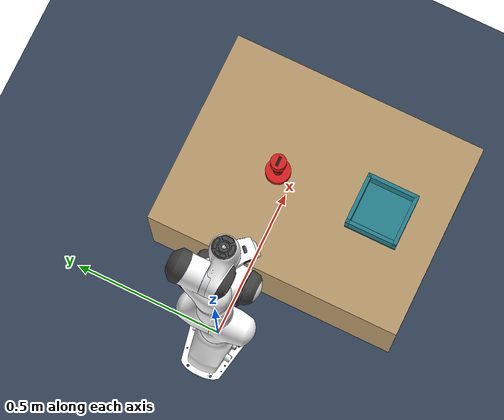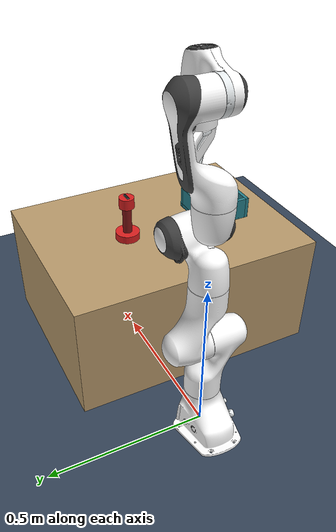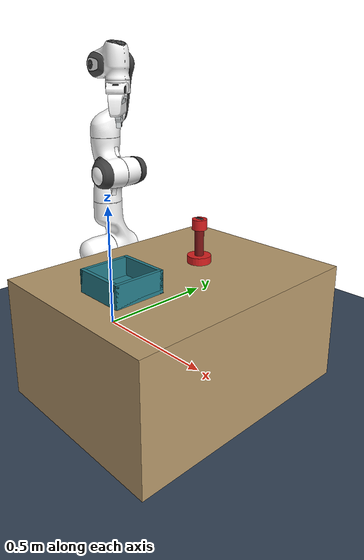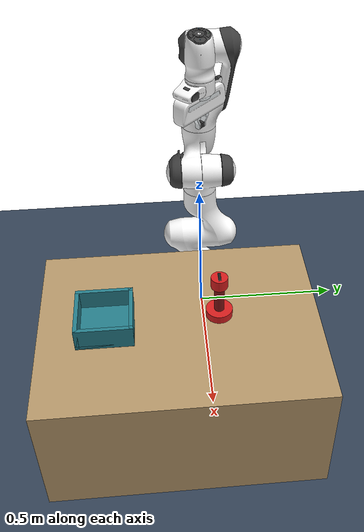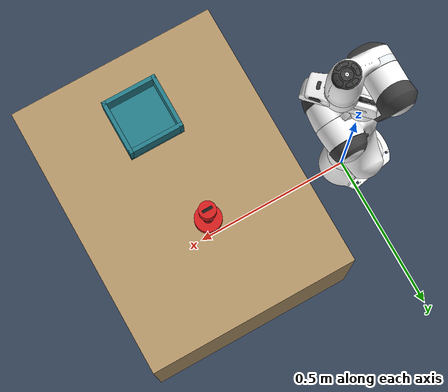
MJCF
<mujoco model="pick_place_scene">
  <include file="../robots/panda/panda.xml"/>
  <compiler angle="radian" meshdir="../robots/panda/assets" autolimits="true"/>

  <statistic center="0.4 -0.1 0.4" extent="1.2"/>

  <visual>
    <headlight diffuse="0.6 0.6 0.6" ambient="0.35 0.35 0.35" specular="0.1 0.1 0.1"/>
    <rgba haze="0.15 0.25 0.35 1"/>
    <global azimuth="140" elevation="-22" offwidth="1280" offheight="960"/>
    <quality shadowsize="4096"/>
    <!-- 收紧深度裁剪范围以提升 RGB-D 深度精度（改善像素反投影位姿估计） -->
    <map znear="0.05" zfar="2.2"/>
  </visual>

  <asset>
    <texture type="skybox" builtin="gradient" rgb1="0.35 0.55 0.75" rgb2="0.05 0.08 0.12" width="512" height="3072"/>
    <texture type="2d" name="groundplane" builtin="checker" mark="edge" rgb1="0.25 0.32 0.4" rgb2="0.15 0.2 0.28"
      markrgb="0.8 0.8 0.8" width="300" height="300"/>
    <material name="groundplane" texture="groundplane" texuniform="true" texrepeat="5 5" reflectance="0.15"/>
    <material name="table_wood" rgba="0.72 0.6 0.42 1" specular="0.15" shininess="0.2"/>
  </asset>

  <worldbody>
    <light pos="0.4 0.2 2.0" dir="0 0 -1" directional="true" diffuse="0.5 0.5 0.5"/>
    <light pos="0.4 -0.6 1.6" dir="0 0.4 -1" diffuse="0.35 0.35 0.35"/>
    <geom name="floor" size="0 0 0.05" type="plane" material="groundplane"/>

    <!-- 工作台：台面高 0.40 m -->
    <body name="table" pos="0.5 -0.1 0.20">
      <geom name="table_top" type="box" size="0.32 0.42 0.20" material="table_wood"
            friction="1.0 0.02 0.001" condim="4"/>
    </body>

    <!-- 固定 RGB-D 相机（眼在手外，主感知相机），俯视工作区 -->
    <camera name="scene_cam" pos="0.5 0.75 1.05" mode="targetbody" target="table" fovy="50"/>
    <!-- 近似俯视相机，用于位姿真值对照 -->
    <camera name="topdown_cam" pos="0.5 -0.1 1.35" mode="targetbody" target="table" fovy="52"/>
    <!-- 演示/录像用相机（斜前方，画面更立体） -->
    <camera name="video_cam" pos="1.15 0.85 0.95" mode="targetbody" target="table" fovy="45"/>
  </worldbody>

  <include file="../objects/cube.xml"/>
  <include file="../objects/tray.xml"/>

  <!-- 抓取焊接约束：夹爪闭合且物体在指间时激活，等效牢固夹持；松开时解除。
       relpose 在激活瞬间由代码按当前相对位姿写入。 -->
  <equality>
    <weld name="grasp_weld" body1="hand" body2="energy_unit" active="false"
          solref="0.02 1" solimp="0.9 0.95 0.001"/>
  </equality>
</mujoco>

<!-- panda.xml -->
<mujoco model="panda">
  <compiler angle="radian" meshdir="assets" autolimits="true"/>

  <option integrator="implicitfast"/>

  <default>
    <default class="panda">
      <material specular="0.5" shininess="0.25"/>
      <joint armature="0.1" damping="1" axis="0 0 1" range="-2.8973 2.8973"/>
      <general dyntype="none" biastype="affine" ctrlrange="-2.8973 2.8973" forcerange="-87 87"/>
      <default class="finger">
        <joint axis="0 1 0" type="slide" range="0 0.04"/>
      </default>

      <default class="visual">
        <geom type="mesh" contype="0" conaffinity="0" group="2"/>
      </default>
      <default class="collision">
        <geom type="mesh" group="3"/>
        <default class="fingertip_pad_collision_1">
          <geom type="box" size="0.0085 0.004 0.0085" pos="0 0.0055 0.0445"/>
        </default>
        <default class="fingertip_pad_collision_2">
          <geom type="box" size="0.003 0.002 0.003" pos="0.0055 0.002 0.05"/>
        </default>
        <default class="fingertip_pad_collision_3">
          <geom type="box" size="0.003 0.002 0.003" pos="-0.0055 0.002 0.05"/>
        </default>
        <default class="fingertip_pad_collision_4">
          <geom type="box" size="0.003 0.002 0.0035" pos="0.0055 0.002 0.0395"/>
        </default>
        <default class="fingertip_pad_collision_5">
          <geom type="box" size="0.003 0.002 0.0035" pos="-0.0055 0.002 0.0395"/>
        </default>
      </default>
    </default>
  </default>

  <asset>
    <material class="panda" name="white" rgba="1 1 1 1"/>
    <material class="panda" name="off_white" rgba="0.901961 0.921569 0.929412 1"/>
    <material class="panda" name="black" rgba="0.25 0.25 0.25 1"/>
    <material class="panda" name="green" rgba="0 1 0 1"/>
    <material class="panda" name="light_blue" rgba="0.039216 0.541176 0.780392 1"/>

    <!-- Collision meshes -->
    <mesh name="link0_c" file="link0.stl"/>
    <mesh name="link1_c" file="link1.stl"/>
    <mesh name="link2_c" file="link2.stl"/>
    <mesh name="link3_c" file="link3.stl"/>
    <mesh name="link4_c" file="link4.stl"/>
    <mesh name="link5_c0" file="link5_collision_0.obj"/>
    <mesh name="link5_c1" file="link5_collision_1.obj"/>
    <mesh name="link5_c2" file="link5_collision_2.obj"/>
    <mesh name="link6_c" file="link6.stl"/>
    <mesh name="link7_c" file="link7.stl"/>
    <mesh name="hand_c" file="hand.stl"/>

    <!-- Visual meshes -->
    <mesh file="link0_0.obj"/>
    <mesh file="link0_1.obj"/>
    <mesh file="link0_2.obj"/>
    <mesh file="link0_3.obj"/>
    <mesh file="link0_4.obj"/>
    <mesh file="link0_5.obj"/>
    <mesh file="link0_7.obj"/>
    <mesh file="link0_8.obj"/>
    <mesh file="link0_9.obj"/>
    <mesh file="link0_10.obj"/>
    <mesh file="link0_11.obj"/>
    <mesh file="link1.obj"/>
    <mesh file="link2.obj"/>
    <mesh file="link3_0.obj"/>
    <mesh file="link3_1.obj"/>
    <mesh file="link3_2.obj"/>
    <mesh file="link3_3.obj"/>
    <mesh file="link4_0.obj"/>
    <mesh file="link4_1.obj"/>
    <mesh file="link4_2.obj"/>
    <mesh file="link4_3.obj"/>
    <mesh file="link5_0.obj"/>
    <mesh file="link5_1.obj"/>
    <mesh file="link5_2.obj"/>
    <mesh file="link6_0.obj"/>
    <mesh file="link6_1.obj"/>
    <mesh file="link6_2.obj"/>
    <mesh file="link6_3.obj"/>
    <mesh file="link6_4.obj"/>
    <mesh file="link6_5.obj"/>
    <mesh file="link6_6.obj"/>
    <mesh file="link6_7.obj"/>
    <mesh file="link6_8.obj"/>
    <mesh file="link6_9.obj"/>
    <mesh file="link6_10.obj"/>
    <mesh file="link6_11.obj"/>
    <mesh file="link6_12.obj"/>
    <mesh file="link6_13.obj"/>
    <mesh file="link6_14.obj"/>
    <mesh file="link6_15.obj"/>
    <mesh file="link6_16.obj"/>
    <mesh file="link7_0.obj"/>
    <mesh file="link7_1.obj"/>
    <mesh file="link7_2.obj"/>
    <mesh file="link7_3.obj"/>
    <mesh file="link7_4.obj"/>
    <mesh file="link7_5.obj"/>
    <mesh file="link7_6.obj"/>
    <mesh file="link7_7.obj"/>
    <mesh file="hand_0.obj"/>
    <mesh file="hand_1.obj"/>
    <mesh file="hand_2.obj"/>
    <mesh file="hand_3.obj"/>
    <mesh file="hand_4.obj"/>
    <mesh file="finger_0.obj"/>
    <mesh file="finger_1.obj"/>
  </asset>

  <worldbody>
    <light name="top" pos="0 0 2" mode="trackcom"/>
    <body name="link0" childclass="panda">
      <inertial mass="0.629769" pos="-0.041018 -0.00014 0.049974"
        fullinertia="0.00315 0.00388 0.004285 8.2904e-7 0.00015 8.2299e-6"/>
      <geom mesh="link0_0" material="off_white" class="visual"/>
      <geom mesh="link0_1" material="black" class="visual"/>
      <geom mesh="link0_2" material="off_white" class="visual"/>
      <geom mesh="link0_3" material="black" class="visual"/>
      <geom mesh="link0_4" material="off_white" class="visual"/>
      <geom mesh="link0_5" material="black" class="visual"/>
      <geom mesh="link0_7" material="white" class="visual"/>
      <geom mesh="link0_8" material="white" class="visual"/>
      <geom mesh="link0_9" material="black" class="visual"/>
      <geom mesh="link0_10" material="off_white" class="visual"/>
      <geom mesh="link0_11" material="white" class="visual"/>
      <geom mesh="link0_c" class="collision"/>
      <body name="link1" pos="0 0 0.333">
        <inertial mass="4.970684" pos="0.003875 0.002081 -0.04762"
          fullinertia="0.70337 0.70661 0.0091170 -0.00013900 0.0067720 0.019169"/>
        <joint name="joint1"/>
        <geom material="white" mesh="link1" class="visual"/>
        <geom mesh="link1_c" class="collision"/>
        <body name="link2" quat="1 -1 0 0">
          <inertial mass="0.646926" pos="-0.003141 -0.02872 0.003495"
            fullinertia="0.0079620 2.8110e-2 2.5995e-2 -3.925e-3 1.0254e-2 7.04e-4"/>
          <joint name="joint2" range="-1.7628 1.7628"/>
          <geom material="white" mesh="link2" class="visual"/>
          <geom mesh="link2_c" class="collision"/>
          <body name="link3" pos="0 -0.316 0" quat="1 1 0 0">
            <joint name="joint3"/>
            <inertial mass="3.228604" pos="2.7518e-2 3.9252e-2 -6.6502e-2"
              fullinertia="3.7242e-2 3.6155e-2 1.083e-2 -4.761e-3 -1.1396e-2 -1.2805e-2"/>
            <geom mesh="link3_0" material="white" class="visual"/>
            <geom mesh="link3_1" material="white" class="visual"/>
            <geom mesh="link3_2" material="white" class="visual"/>
            <geom mesh="link3_3" material="black" class="visual"/>
            <geom mesh="link3_c" class="collision"/>
            <body name="link4" pos="0.0825 0 0" quat="1 1 0 0">
              <inertial mass="3.587895" pos="-5.317e-2 1.04419e-1 2.7454e-2"
                fullinertia="2.5853e-2 1.9552e-2 2.8323e-2 7.796e-3 -1.332e-3 8.641e-3"/>
              <joint name="joint4" range="-3.0718 -0.0698"/>
              <geom mesh="link4_0" material="white" class="visual"/>
              <geom mesh="link4_1" material="white" class="visual"/>
              <geom mesh="link4_2" material="black" class="visual"/>
              <geom mesh="link4_3" material="white" class="visual"/>
              <geom mesh="link4_c" class="collision"/>
              <body name="link5" pos="-0.0825 0.384 0" quat="1 -1 0 0">
                <inertial mass="1.225946" pos="-1.1953e-2 4.1065e-2 -3.8437e-2"
                  fullinertia="3.5549e-2 2.9474e-2 8.627e-3 -2.117e-3 -4.037e-3 2.29e-4"/>
                <joint name="joint5"/>
                <geom mesh="link5_0" material="black" class="visual"/>
                <geom mesh="link5_1" material="white" class="visual"/>
                <geom mesh="link5_2" material="white" class="visual"/>
                <geom mesh="link5_c0" class="collision"/>
                <geom mesh="link5_c1" class="collision"/>
                <geom mesh="link5_c2" class="collision"/>
                <body name="link6" quat="1 1 0 0">
                  <inertial mass="1.666555" pos="6.0149e-2 -1.4117e-2 -1.0517e-2"
                    fullinertia="1.964e-3 4.354e-3 5.433e-3 1.09e-4 -1.158e-3 3.41e-4"/>
                  <joint name="joint6" range="-0.0175 3.7525"/>
                  <geom mesh="link6_0" material="off_white" class="visual"/>
                  <geom mesh="link6_1" material="white" class="visual"/>
                  <geom mesh="link6_2" material="black" class="visual"/>
                  <geom mesh="link6_3" material="white" class="visual"/>
                  <geom mesh="link6_4" material="white" class="visual"/>
                  <geom mesh="link6_5" material="white" class="visual"/>
                  <geom mesh="link6_6" material="white" class="visual"/>
                  <geom mesh="link6_7" material="light_blue" class="visual"/>
                  <geom mesh="link6_8" material="light_blue" class="visual"/>
                  <geom mesh="link6_9" material="black" class="visual"/>
                  <geom mesh="link6_10" material="black" class="visual"/>
                  <geom mesh="link6_11" material="white" class="visual"/>
                  <geom mesh="link6_12" material="green" class="visual"/>
                  <geom mesh="link6_13" material="white" class="visual"/>
                  <geom mesh="link6_14" material="black" class="visual"/>
                  <geom mesh="link6_15" material="black" class="visual"/>
                  <geom mesh="link6_16" material="white" class="visual"/>
                  <geom mesh="link6_c" class="collision"/>
                  <body name="link7" pos="0.088 0 0" quat="1 1 0 0">
                    <inertial mass="7.35522e-01" pos="1.0517e-2 -4.252e-3 6.1597e-2"
                      fullinertia="1.2516e-2 1.0027e-2 4.815e-3 -4.28e-4 -1.196e-3 -7.41e-4"/>
                    <joint name="joint7"/>
                    <geom mesh="link7_0" material="white" class="visual"/>
                    <geom mesh="link7_1" material="black" class="visual"/>
                    <geom mesh="link7_2" material="black" class="visual"/>
                    <geom mesh="link7_3" material="black" class="visual"/>
                    <geom mesh="link7_4" material="black" class="visual"/>
                    <geom mesh="link7_5" material="black" class="visual"/>
                    <geom mesh="link7_6" material="black" class="visual"/>
                    <geom mesh="link7_7" material="white" class="visual"/>
                    <geom mesh="link7_c" class="collision"/>
                    <body name="hand" pos="0 0 0.107" quat="0.9238795 0 0 -0.3826834">
                      <inertial mass="0.73" pos="-0.01 0 0.03" diaginertia="0.001 0.0025 0.0017"/>
                      <site name="grasp_site" pos="0 0 0.085" size="0.006" rgba="1 0.2 0.2 0.6" group="4"/>
                      <geom mesh="hand_0" material="off_white" class="visual"/>
                      <geom mesh="hand_1" material="black" class="visual"/>
                      <geom mesh="hand_2" material="black" class="visual"/>
                      <geom mesh="hand_3" material="white" class="visual"/>
                      <geom mesh="hand_4" material="off_white" class="visual"/>
                      <geom mesh="hand_c" class="collision"/>
                      <body name="left_finger" pos="0 0 0.0584">
                        <inertial mass="0.015" pos="0 0 0" diaginertia="2.375e-6 2.375e-6 7.5e-7"/>
                        <joint name="finger_joint1" class="finger"/>
                        <geom mesh="finger_0" material="off_white" class="visual"/>
                        <geom mesh="finger_1" material="black" class="visual"/>
                        <geom mesh="finger_0" class="collision"/>
                        <geom class="fingertip_pad_collision_1"/>
                        <geom class="fingertip_pad_collision_2"/>
                        <geom class="fingertip_pad_collision_3"/>
                        <geom class="fingertip_pad_collision_4"/>
                        <geom class="fingertip_pad_collision_5"/>
                      </body>
                      <body name="right_finger" pos="0 0 0.0584" quat="0 0 0 1">
                        <inertial mass="0.015" pos="0 0 0" diaginertia="2.375e-6 2.375e-6 7.5e-7"/>
                        <joint name="finger_joint2" class="finger"/>
                        <geom mesh="finger_0" material="off_white" class="visual"/>
                        <geom mesh="finger_1" material="black" class="visual"/>
                        <geom mesh="finger_0" class="collision"/>
                        <geom class="fingertip_pad_collision_1"/>
                        <geom class="fingertip_pad_collision_2"/>
                        <geom class="fingertip_pad_collision_3"/>
                        <geom class="fingertip_pad_collision_4"/>
                        <geom class="fingertip_pad_collision_5"/>
                      </body>
                    </body>
                  </body>
                </body>
              </body>
            </body>
          </body>
        </body>
      </body>
    </body>
  </worldbody>

  <tendon>
    <fixed name="split">
      <joint joint="finger_joint1" coef="0.5"/>
      <joint joint="finger_joint2" coef="0.5"/>
    </fixed>
  </tendon>

  <equality>
    <joint joint1="finger_joint1" joint2="finger_joint2" solimp="0.95 0.99 0.001" solref="0.005 1"/>
  </equality>

  <actuator>
    <general class="panda" name="actuator1" joint="joint1" gainprm="4500" biasprm="0 -4500 -450"/>
    <general class="panda" name="actuator2" joint="joint2" gainprm="4500" biasprm="0 -4500 -450"
      ctrlrange="-1.7628 1.7628"/>
    <general class="panda" name="actuator3" joint="joint3" gainprm="3500" biasprm="0 -3500 -350"/>
    <general class="panda" name="actuator4" joint="joint4" gainprm="3500" biasprm="0 -3500 -350"
      ctrlrange="-3.0718 -0.0698"/>
    <general class="panda" name="actuator5" joint="joint5" gainprm="2000" biasprm="0 -2000 -200" forcerange="-12 12"/>
    <general class="panda" name="actuator6" joint="joint6" gainprm="2000" biasprm="0 -2000 -200" forcerange="-12 12"
      ctrlrange="-0.0175 3.7525"/>
    <general class="panda" name="actuator7" joint="joint7" gainprm="2000" biasprm="0 -2000 -200" forcerange="-12 12"/>
    <!-- Remap original ctrlrange (0, 0.04) to (0, 255): 0.04 * 100 / 255 = 0.01568627451 -->
    <general class="panda" name="actuator8" tendon="split" forcerange="-100 100" ctrlrange="0 255"
      gainprm="0.01568627451 0 0" biasprm="0 -100 -10"/>
  </actuator>

  <!-- home keyframe 已移除：整场景含自由关节物体，qpos 维度改变，初始位姿改由 configs/robot.yaml 在代码中设置 -->

  <contact>
    <exclude body1="link0" body2="link1"/>
  </contact>
</mujoco>

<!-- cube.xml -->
<mujoco model="energy_unit">
  <asset>
    <material name="energy_red" rgba="0.85 0.12 0.12 1" specular="0.3" shininess="0.3"/>
    <material name="energy_dark" rgba="0.5 0.08 0.08 1"/>
  </asset>

  <worldbody>
    <body name="energy_unit" pos="0.48 0.02 0.4005">
      <freejoint name="energy_unit_free"/>
      <inertial pos="0 0 0.07" mass="0.45" diaginertia="0.0009 0.0009 0.00035"/>
      <!-- 底端盖：Ø80 (r0.040)，z ∈ [0, 0.025] -->
      <geom name="eu_bottom" type="cylinder" material="energy_red"
            pos="0 0 0.0125" size="0.040 0.0125"
            friction="1.2 0.02 0.001" condim="6" solref="0.004 1" solimp="0.95 0.99 0.001"/>
      <!-- 细腰（可夹持段，仿真代理 Ø30, r0.015）：z ∈ [0.025, 0.115]，供夹爪自上而下环入夹持 -->
      <geom name="eu_waist" type="cylinder" material="energy_dark"
            pos="0 0 0.070 " size="0.015 0.045"
            friction="1.8 0.05 0.001" condim="6" solref="0.004 1" solimp="0.97 0.99 0.001"/>
      <!-- 顶端盖（仅视觉，不参与碰撞，避免遮挡自上而下的夹持路径）Ø50 -->
      <geom name="eu_top" type="cylinder" material="energy_red"
            pos="0 0 0.1325" size="0.025 0.0175" contype="0" conaffinity="0"/>
      <!-- 顶部旋转轴参考标记（深色小块） -->
      <geom name="eu_mark" type="box" pos="0 0 0.151" size="0.015 0.004 0.002"
            rgba="0.1 0.1 0.1 1" contype="0" conaffinity="0"/>
    </body>
  </worldbody>
</mujoco>

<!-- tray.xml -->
<mujoco model="tray">
  <!--
    放置区 / 简化科技核心受体 (placement target)
    一个浅口方盒，能量单元竖直放入其内腔完成"装配"。
    着蓝绿色以区别于红色能量单元，便于视觉区分。
  -->
  <asset>
    <material name="tray_teal" rgba="0.15 0.5 0.55 1" specular="0.2" shininess="0.2"/>
    <material name="tray_slot" rgba="0.08 0.3 0.34 1"/>
  </asset>

  <worldbody>
    <body name="tray" pos="0.5 -0.32 0.40">
      <!-- 底板 -->
      <geom name="tray_base" type="box" pos="0 0 0.006" size="0.085 0.085 0.006"
            material="tray_teal" friction="1.0 0.02 0.001" condim="4"/>
      <!-- 四壁，围出内腔 (内半径约 0.077)，壁高 0.06 -->
      <geom name="tray_wx1" type="box" pos="0.079 0 0.036" size="0.006 0.085 0.036" material="tray_teal"/>
      <geom name="tray_wx2" type="box" pos="-0.079 0 0.036" size="0.006 0.085 0.036" material="tray_teal"/>
      <geom name="tray_wy1" type="box" pos="0 0.079 0.036" size="0.085 0.006 0.036" material="tray_teal"/>
      <geom name="tray_wy2" type="box" pos="0 -0.079 0.036" size="0.085 0.006 0.036" material="tray_teal"/>
      <!-- 内腔中心标记点（供放置目标位姿参考） -->
      <site name="tray_center" pos="0 0 0.012" size="0.01" rgba="0.9 0.9 0.2 0.5" group="4"/>
    </body>
  </worldbody>
</mujoco>
